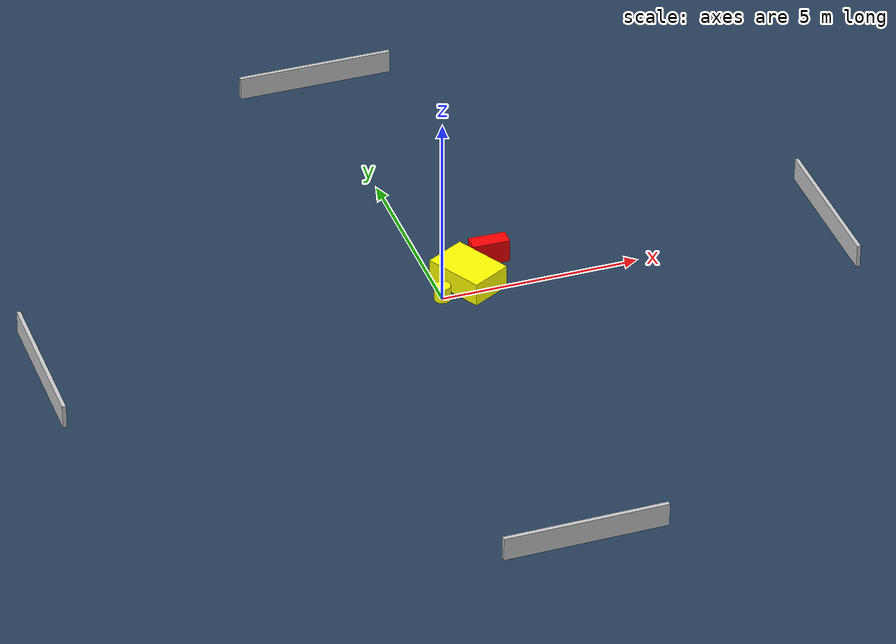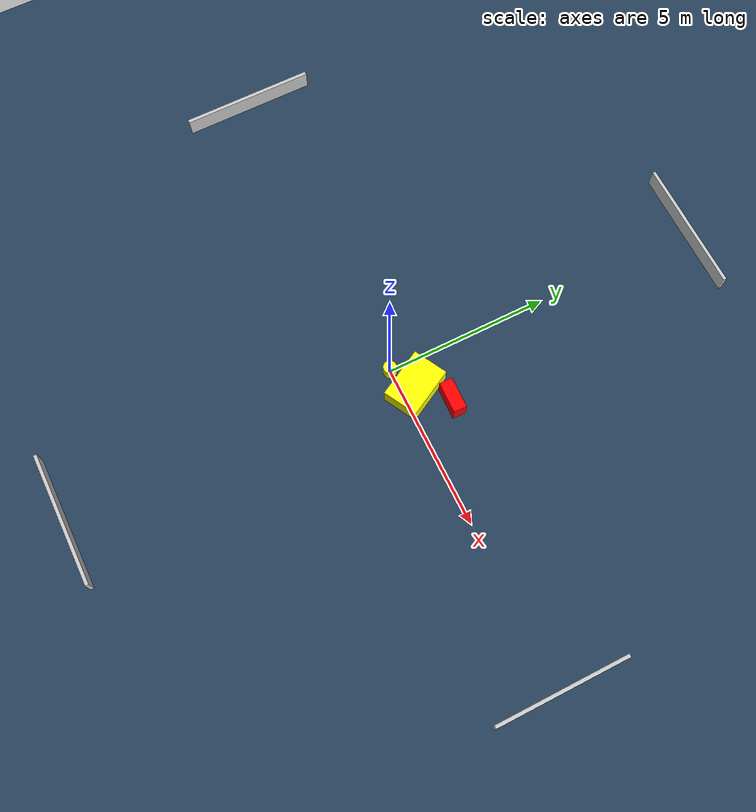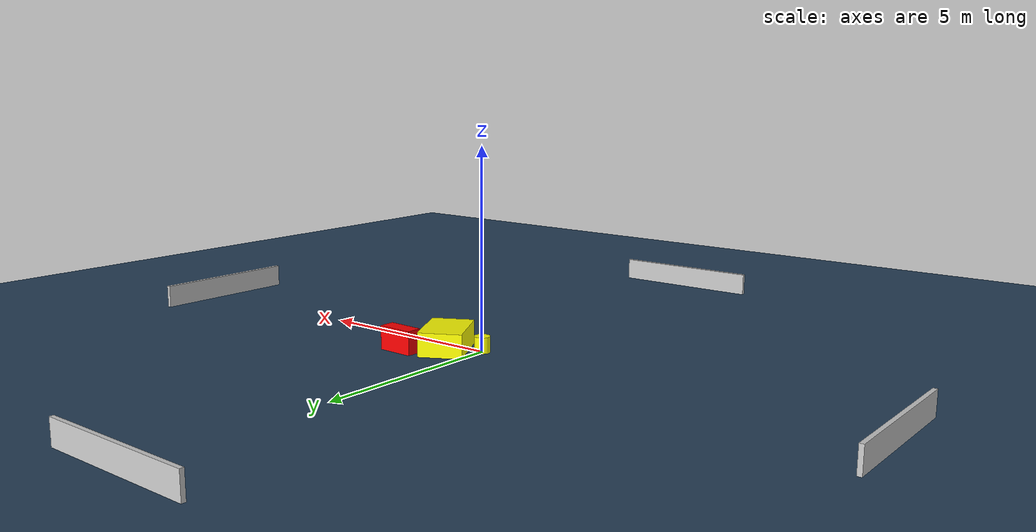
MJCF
<?xml version="1.0" ?>
<mujoco model="generated_environment">
  <option timestep="0.01" integrator="RK4" cone="elliptic"/>
  <default>
    <geom density="1"/>
  </default>
  <asset>
    <texture builtin="gradient" height="3072" name="skybox" rgb1="0.3 0.5 0.7" rgb2="0 0 0" type="skybox" width="512"/>
    <texture builtin="checker" height="300" name="groundplane" rgb1="0.2 0.3 0.4" rgb2="0.1 0.2 0.3" type="2d" width="300"/>
    <material name="groundplane" reflectance="0.2" texrepeat="5 5" texture="groundplane"/>
  </asset>
  <worldbody>
    <light dir="0 0 -1" directional="true" pos="0 0 1.5"/>
    <geom condim="3" friction="0.5 0.005 0.001" material="groundplane" name="floor" pos="0 0 0" size="0 0 0.05" type="plane"/>
    <body name="walls">
      <geom name="wall_1" condim="4" pos="-10.0 0.0 0.3" rgba="0.800000011920929 0.800000011920929 0.800000011920929 1.0" size="0.05 2.0 0.3" type="box"/>
      <geom name="wall_2" condim="4" pos="10.0 0.0 0.3" rgba="0.800000011920929 0.800000011920929 0.800000011920929 1.0" size="0.05 2.0 0.3" type="box"/>
      <geom name="wall_3" condim="4" pos="0.0 -10.0 0.3" rgba="0.800000011920929 0.800000011920929 0.800000011920929 1.0" size="2.0 0.05 0.3" type="box"/>
      <geom name="wall_4" condim="4" pos="0.0 10.0 0.3" rgba="0.800000011920929 0.800000011920929 0.800000011920929 1.0" size="2.0 0.05 0.3" type="box"/>
    </body>
    <body name="robot">
      <joint name="joint_x" type="slide" pos="0 0 0" axis="1 0 0"/>
      <joint name="joint_y" type="slide" pos="0 0 0" axis="0 1 0"/>
      <geom name="robot" type="cylinder" pos="0.0 0.0 0.2" size="0.2 0.2 0.0" mass="5.0" friction="1.0 0.005 0.0001" condim="4" rgba="1.0 1.0 0.0 1.0"/>
    </body>
    <body name="obstacle_1_movable">
      <geom name="obstacle_1_movable" condim="4" pos="0.7964329074948137 0.4059283200450538 0.3" euler="0 0 118.40637956147337" friction="0.0 0.005 0.001" rgba="1.0 1.0 0.0 1.0" size="0.7687281177632725 0.5415693551875558 0.3" type="box" mass="0.1"/>
      <joint type="free"/>
    </body>
    <body name="obstacle_2_static">
      <geom name="obstacle_2_static" condim="4" pos="1.607740127591868 1.1863060910411678 0.3" euler="0 0 358.467250521873" friction="0.0 0.005 0.001" rgba="1.0 0.0 0.0 1.0" size="0.4715896297237439 0.20074314760595535 0.3" type="box"/>
    </body>
  </worldbody>
  <actuator>
    <motor name="actuator_x" joint="joint_x" gear="1" ctrlrange="-1 1"/>
    <motor name="actuator_y" joint="joint_y" gear="1" ctrlrange="-1 1"/>
  </actuator>
</mujoco>
